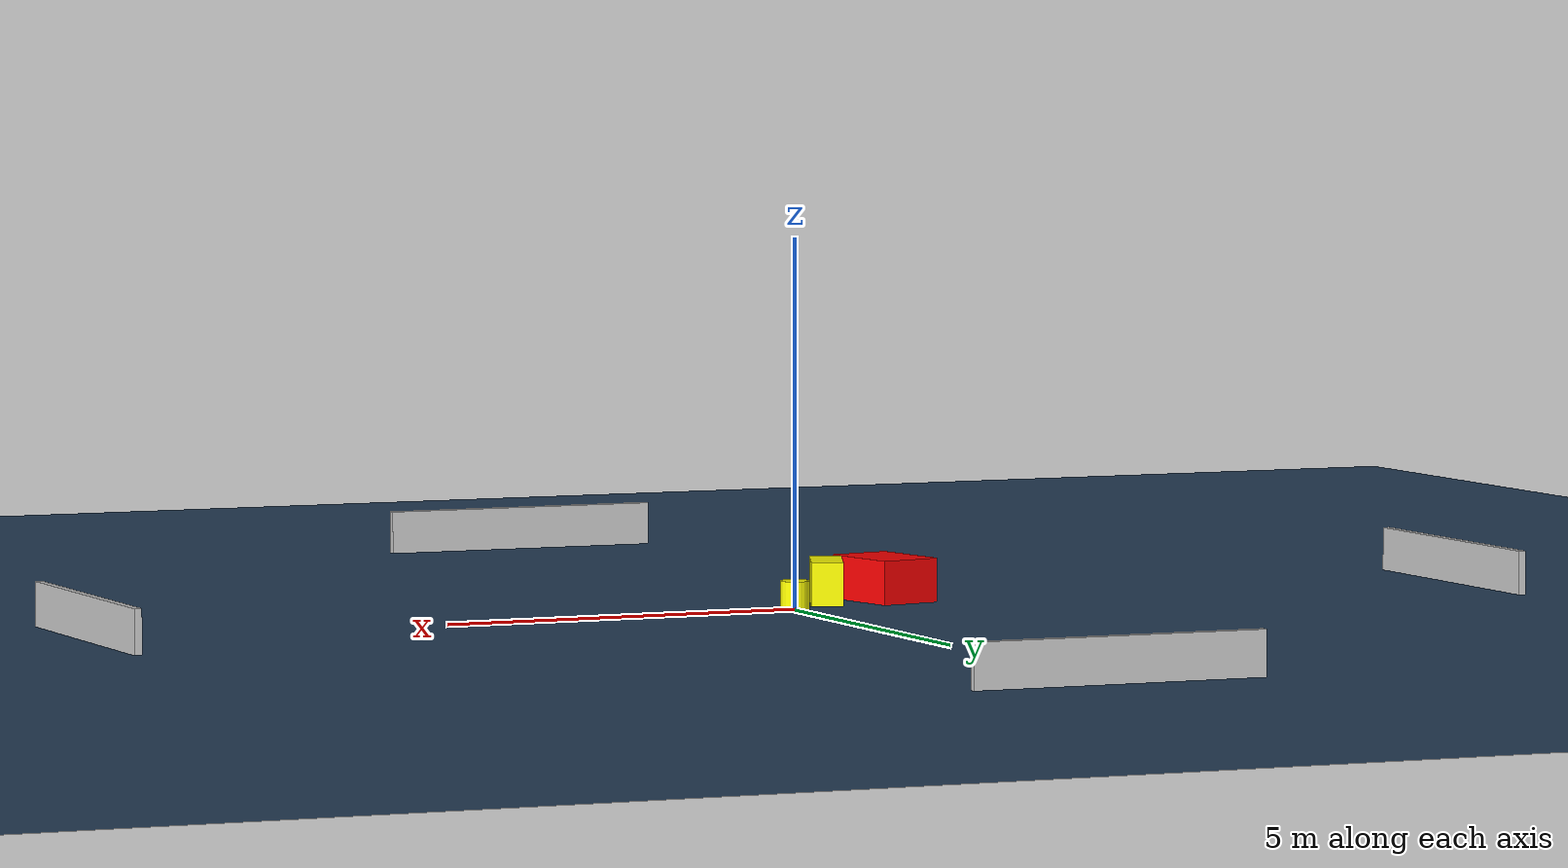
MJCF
<?xml version="1.0" ?>
<mujoco model="generated_environment">
  <option timestep="0.01" integrator="RK4" cone="elliptic"/>
  <default>
    <geom density="1"/>
  </default>
  <asset>
    <texture builtin="gradient" height="3072" name="skybox" rgb1="0.3 0.5 0.7" rgb2="0 0 0" type="skybox" width="512"/>
    <texture builtin="checker" height="300" name="groundplane" rgb1="0.2 0.3 0.4" rgb2="0.1 0.2 0.3" type="2d" width="300"/>
    <material name="groundplane" reflectance="0.2" texrepeat="5 5" texture="groundplane"/>
  </asset>
  <worldbody>
    <light dir="0 0 -1" directional="true" pos="0 0 1.5"/>
    <geom condim="3" friction="0.5 0.005 0.001" material="groundplane" name="floor" pos="0 0 0" size="0 0 0.05" type="plane"/>
    <body name="walls">
      <geom name="wall_1" condim="4" pos="-10.0 0.0 0.3" rgba="0.800000011920929 0.800000011920929 0.800000011920929 1.0" size="0.05 2.0 0.3" type="box"/>
      <geom name="wall_2" condim="4" pos="10.0 0.0 0.3" rgba="0.800000011920929 0.800000011920929 0.800000011920929 1.0" size="0.05 2.0 0.3" type="box"/>
      <geom name="wall_3" condim="4" pos="0.0 -10.0 0.3" rgba="0.800000011920929 0.800000011920929 0.800000011920929 1.0" size="2.0 0.05 0.3" type="box"/>
      <geom name="wall_4" condim="4" pos="0.0 10.0 0.3" rgba="0.800000011920929 0.800000011920929 0.800000011920929 1.0" size="2.0 0.05 0.3" type="box"/>
    </body>
    <body name="robot">
      <joint name="joint_x" type="slide" pos="0 0 0" axis="1 0 0"/>
      <joint name="joint_y" type="slide" pos="0 0 0" axis="0 1 0"/>
      <geom name="robot" type="cylinder" pos="0.0 0.0 0.2" size="0.2 0.2 0.0" mass="5.0" friction="1.0 0.005 0.0001" condim="4" rgba="1.0 1.0 0.0 1.0"/>
    </body>
    <body name="obstacle_1_movable">
      <geom name="obstacle_1_movable" condim="4" pos="-0.7607364562857131 -0.6870285417814675 0.3" euler="0 0 158.05260911501634" friction="0.0 0.005 0.001" rgba="1.0 1.0 0.0 1.0" size="0.21741965942236965 0.4692354015865257 0.3" type="box" mass="0.1"/>
      <joint type="free"/>
    </body>
    <body name="obstacle_2_static">
      <geom name="obstacle_2_static" condim="4" pos="-1.6776178616468138 -0.7919626164252982 0.3" euler="0 0 191.37430221409613" friction="0.0 0.005 0.001" rgba="1.0 0.0 0.0 1.0" size="0.4337302251747801 0.6078278553174022 0.3" type="box"/>
    </body>
  </worldbody>
  <actuator>
    <motor name="actuator_x" joint="joint_x" gear="1" ctrlrange="-1 1"/>
    <motor name="actuator_y" joint="joint_y" gear="1" ctrlrange="-1 1"/>
  </actuator>
</mujoco>
